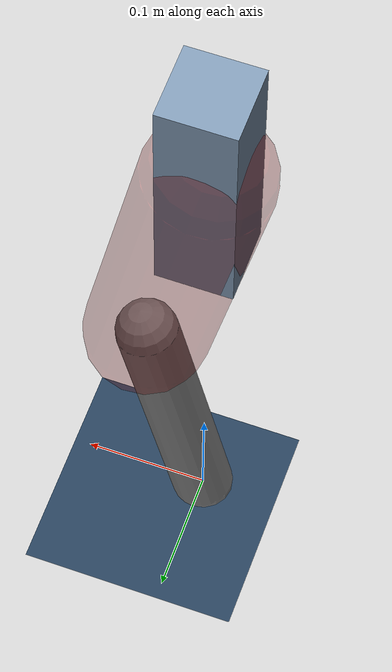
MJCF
<mujoco model="Hopper2D">
	<compiler inertiafromgeom="true" angle="radian" />
	<option timestep="0.001" integrator="implicit" cone="elliptic" solver="Newton" tolerance="1e-10" />

	<default>
		<geom contype="1" conaffinity="1" condim="3" friction="2 0.005 0.0001" solref="0.005 1" />
		<joint limited="true" damping="0.1" />
	</default>

	<asset>
		<texture name="skybox" type="skybox" builtin="gradient" rgb1=".4 .6 .8" rgb2="0 0 0" width="800" height="800" />
		<texture name="grid" type="2d" builtin="checker" rgb1=".1 .2 .3" rgb2=".2 .3 .4" width="300" height="300" mark="edge" markrgb=".2 .3 .4" />
		<material name="ground" texture="grid" texrepeat="1 1" texuniform="true" reflectance="0.1" />
		<material name="leg" rgba="0.5 0.6 0.7 1" />
	</asset>

	<worldbody>

		<geom name="floor" type="plane" size="5 5 0.25" material="ground" />

		<light directional="false" diffuse="0.8 0.8 0.8" specular="0.3 0.3 0.3" pos="0 0 2" dir="0 0 -1" />
		<light mode="targetbodycom" target="base" directional="false" diffuse="0.8 0.8 0.8" specular="0.3 0.3 0.3" pos="0 0 2" dir="0 0 -1" />

		<camera name="fixed" pos="0 -2 1" xyaxes="1 0 0 0 0 1" />
		<camera name="tracking" mode="trackcom" pos="0 -3 1" />

		<body name="root" pos="0 0 0.4562025926429193">
			<joint name="slide_x" type="slide" axis="1 0 0" range="-100 100" />
			<joint name="slide_z" type="slide" axis="0 0 1" range="0 10" />

			<body name="base" pos="0 0 0">
				<geom name="torso" type="box" size="0.03 0.03 0.1" mass="3.3289999999999997" material="leg" />

				<body name="link1" pos="0 0 0" euler="0 1.3702295563796982 0">
					<joint type="hinge" axis="0 -1 0" pos="0 0 0" name="hinge1" limited="true" range="-3.14 3.14" stiffness="0" damping="0.1" />
					<geom name="thigh" type="capsule" fromto="0 0 0 0.24089826319441315 0 0" size="0.05" rgba="0.5 0 0 0.3" mass="0.8329354843054743" />

					<body name="link2" pos="0.24089826319441315 0 0" euler="0 0.41522515662549164 0">
						<joint type="hinge" axis="0 -1 0" pos="0 0 0" name="hinge2" limited="true" range="-3.14 3.14" stiffness="0" damping="0.1" />
						<geom name="shank" type="capsule" fromto="0 0 0 0.22530432944850617 0 0" size="0.025" mass="0.42207389650365557" />

					</body>
				</body>
			</body>
		</body>
	</worldbody>

	<actuator>
		<motor name="torque1" joint="hinge1" ctrlrange="-114.46254082445483 114.46254082445483" ctrllimited="true" gear="1" />
		<motor name="torque2" joint="hinge2" ctrlrange="-119.81155683016995 119.81155683016995" ctrllimited="true" gear="1" />
	</actuator>
</mujoco>
